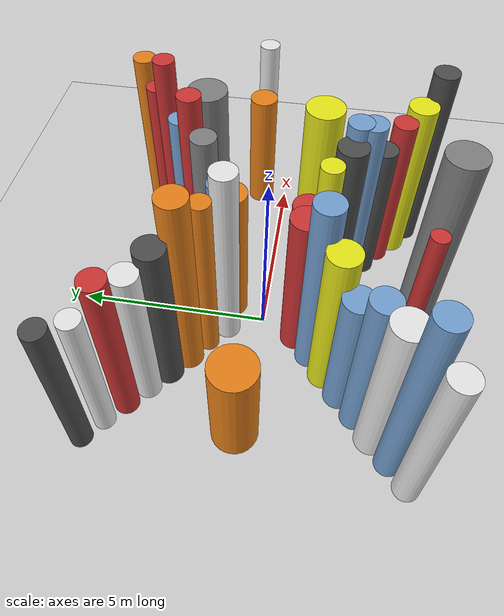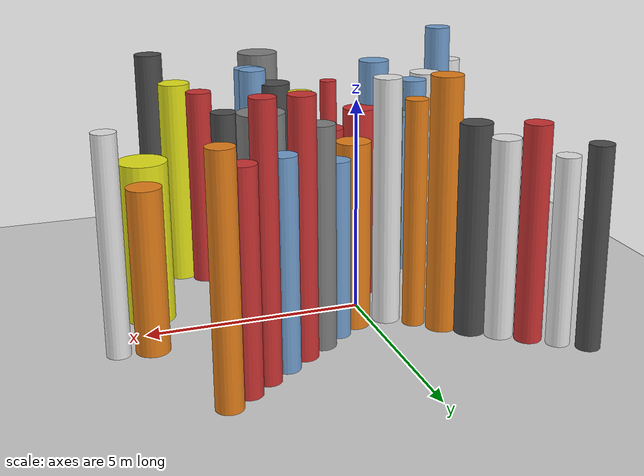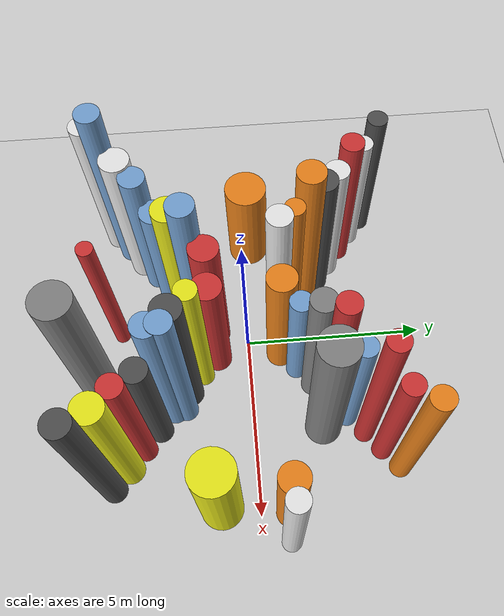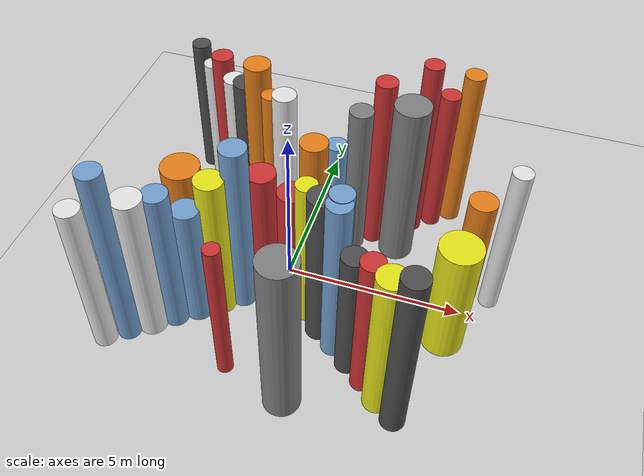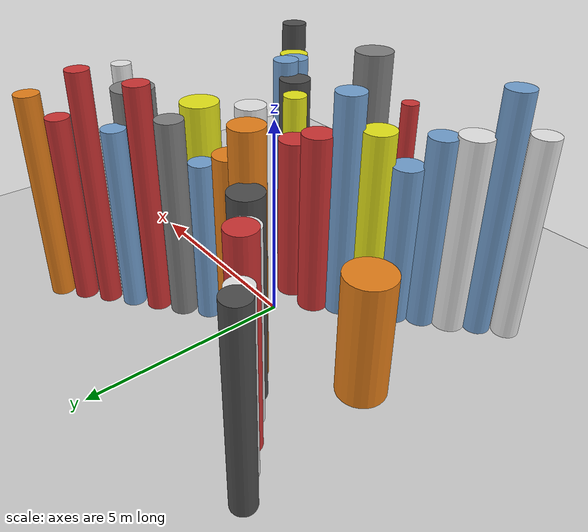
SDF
<?xml version='1.0'?>
<sdf version='1.6'>
  <world name='routeA_rl_v1__dense_recovery__rl_test__bottleneck_corridor__000032'>
    <!-- Sun light -->
    <light name='sun' type='directional'>
      <cast_shadows>1</cast_shadows>
      <pose>0 0 10 0 0 0</pose>
      <diffuse>0.8 0.8 0.8 1</diffuse>
      <specular>0.2 0.2 0.2 1</specular>
      <attenuation>
        <range>1000</range>
        <constant>0.9</constant>
        <linear>0.01</linear>
        <quadratic>0.001</quadratic>
      </attenuation>
      <direction>-0.5 0.1 -0.9</direction>
    </light>

    <!-- Ground plane -->
    <model name='ground_plane'>
      <static>1</static>
      <link name='link'>
        <collision name='collision'>
          <geometry>
            <plane>
              <normal>0 0 1</normal>
              <size>100 100</size>
            </plane>
          </geometry>
          <surface>
            <contact>
              <collide_bitmask>65535</collide_bitmask>
              <ode/>
            </contact>
            <friction>
              <ode>
                <mu>100</mu>
                <mu2>50</mu2>
              </ode>
              <torsional><ode/></torsional>
            </friction>
            <bounce/>
          </surface>
          <max_contacts>10</max_contacts>
        </collision>
        <visual name='visual'>
          <cast_shadows>0</cast_shadows>
          <geometry>
            <plane>
              <normal>0 0 1</normal>
              <size>100 100</size>
            </plane>
          </geometry>
          <material>
            <script>
              <uri>file://media/materials/scripts/gazebo.material</uri>
              <n>Gazebo/Grey</n>
            </script>
          </material>
        </visual>
      </link>
    </model>

    <!-- Environment -->
    <magnetic_field>6e-06 2.3e-05 -4.2e-05</magnetic_field>
    <atmosphere type='adiabatic'/>
    <physics name='default_physics' default='0' type='ode'>
      <gravity>0 0 -9.8</gravity>
      <max_step_size>0.004</max_step_size>
      <real_time_factor>1</real_time_factor>
      <real_time_update_rate>250</real_time_update_rate>
    </physics>
    <scene>
      <ambient>0.4 0.4 0.4 1</ambient>
      <background>0.7 0.7 0.7 1</background>
      <shadows>1</shadows>
    </scene>
    <wind/>
    <spherical_coordinates>
      <surface_model>EARTH_WGS84</surface_model>
      <latitude_deg>0</latitude_deg>
      <longitude_deg>0</longitude_deg>
      <elevation>0</elevation>
      <heading_deg>0</heading_deg>
    </spherical_coordinates>

    <!-- ============ OBSTACLES (40) ============ -->
    <model name='funnel_l_0'>
      <static>1</static>
      <link name='link'>
        <visual name='visual'>
          <geometry>
            <cylinder>
              <radius>0.3156</radius>
              <length>5.0139</length>
            </cylinder>
          </geometry>
          <material>
            <script>
              <n>Gazebo/White</n>
              <uri>file://media/materials/scripts/gazebo.material</uri>
            </script>
            <ambient>0.9 0.9 0.9 1</ambient>
          </material>
        </visual>
        <collision name='collision'>
          <geometry>
            <cylinder>
              <radius>0.3156</radius>
              <length>5.0139</length>
            </cylinder>
          </geometry>
          <max_contacts>10</max_contacts>
          <surface>
            <contact><ode/></contact>
            <bounce/>
            <friction>
              <ode><mu>1</mu><mu2>1</mu2></ode>
              <torsional><ode/></torsional>
            </friction>
          </surface>
        </collision>
      </link>
      <pose>-4.0000 -3.8000 2.5069 0 0 0.0000</pose>
    </model>

    <model name='funnel_r_0'>
      <static>1</static>
      <link name='link'>
        <visual name='visual'>
          <geometry>
            <cylinder>
              <radius>0.2722</radius>
              <length>4.5979</length>
            </cylinder>
          </geometry>
          <material>
            <script>
              <n>Gazebo/DarkGrey</n>
              <uri>file://media/materials/scripts/gazebo.material</uri>
            </script>
            <ambient>0.3 0.3 0.3 1</ambient>
          </material>
        </visual>
        <collision name='collision'>
          <geometry>
            <cylinder>
              <radius>0.2722</radius>
              <length>4.5979</length>
            </cylinder>
          </geometry>
          <max_contacts>10</max_contacts>
          <surface>
            <contact><ode/></contact>
            <bounce/>
            <friction>
              <ode><mu>1</mu><mu2>1</mu2></ode>
              <torsional><ode/></torsional>
            </friction>
          </surface>
        </collision>
      </link>
      <pose>-4.0000 3.8000 2.2989 0 0 0.0000</pose>
    </model>

    <model name='funnel_l_1'>
      <static>1</static>
      <link name='link'>
        <visual name='visual'>
          <geometry>
            <cylinder>
              <radius>0.3234</radius>
              <length>5.9593</length>
            </cylinder>
          </geometry>
          <material>
            <script>
              <n>Gazebo/Blue</n>
              <uri>file://media/materials/scripts/gazebo.material</uri>
            </script>
            <ambient>0.447 0.624 0.812 1</ambient>
          </material>
        </visual>
        <collision name='collision'>
          <geometry>
            <cylinder>
              <radius>0.3234</radius>
              <length>5.9593</length>
            </cylinder>
          </geometry>
          <max_contacts>10</max_contacts>
          <surface>
            <contact><ode/></contact>
            <bounce/>
            <friction>
              <ode><mu>1</mu><mu2>1</mu2></ode>
              <torsional><ode/></torsional>
            </friction>
          </surface>
        </collision>
      </link>
      <pose>-3.4857 -3.3857 2.9796 0 0 0.0000</pose>
    </model>

    <model name='funnel_r_1'>
      <static>1</static>
      <link name='link'>
        <visual name='visual'>
          <geometry>
            <cylinder>
              <radius>0.2677</radius>
              <length>4.2833</length>
            </cylinder>
          </geometry>
          <material>
            <script>
              <n>Gazebo/White</n>
              <uri>file://media/materials/scripts/gazebo.material</uri>
            </script>
            <ambient>0.9 0.9 0.9 1</ambient>
          </material>
        </visual>
        <collision name='collision'>
          <geometry>
            <cylinder>
              <radius>0.2677</radius>
              <length>4.2833</length>
            </cylinder>
          </geometry>
          <max_contacts>10</max_contacts>
          <surface>
            <contact><ode/></contact>
            <bounce/>
            <friction>
              <ode><mu>1</mu><mu2>1</mu2></ode>
              <torsional><ode/></torsional>
            </friction>
          </surface>
        </collision>
      </link>
      <pose>-3.4857 3.3857 2.1416 0 0 0.0000</pose>
    </model>

    <model name='funnel_l_2'>
      <static>1</static>
      <link name='link'>
        <visual name='visual'>
          <geometry>
            <cylinder>
              <radius>0.3946</radius>
              <length>4.8828</length>
            </cylinder>
          </geometry>
          <material>
            <script>
              <n>Gazebo/White</n>
              <uri>file://media/materials/scripts/gazebo.material</uri>
            </script>
            <ambient>0.9 0.9 0.9 1</ambient>
          </material>
        </visual>
        <collision name='collision'>
          <geometry>
            <cylinder>
              <radius>0.3946</radius>
              <length>4.8828</length>
            </cylinder>
          </geometry>
          <max_contacts>10</max_contacts>
          <surface>
            <contact><ode/></contact>
            <bounce/>
            <friction>
              <ode><mu>1</mu><mu2>1</mu2></ode>
              <torsional><ode/></torsional>
            </friction>
          </surface>
        </collision>
      </link>
      <pose>-2.9714 -2.9714 2.4414 0 0 0.0000</pose>
    </model>

    <model name='funnel_r_2'>
      <static>1</static>
      <link name='link'>
        <visual name='visual'>
          <geometry>
            <cylinder>
              <radius>0.3093</radius>
              <length>4.9366</length>
            </cylinder>
          </geometry>
          <material>
            <script>
              <n>Gazebo/Red</n>
              <uri>file://media/materials/scripts/gazebo.material</uri>
            </script>
            <ambient>0.8 0.2 0.2 1</ambient>
          </material>
        </visual>
        <collision name='collision'>
          <geometry>
            <cylinder>
              <radius>0.3093</radius>
              <length>4.9366</length>
            </cylinder>
          </geometry>
          <max_contacts>10</max_contacts>
          <surface>
            <contact><ode/></contact>
            <bounce/>
            <friction>
              <ode><mu>1</mu><mu2>1</mu2></ode>
              <torsional><ode/></torsional>
            </friction>
          </surface>
        </collision>
      </link>
      <pose>-2.9714 2.9714 2.4683 0 0 0.0000</pose>
    </model>

    <model name='funnel_l_3'>
      <static>1</static>
      <link name='link'>
        <visual name='visual'>
          <geometry>
            <cylinder>
              <radius>0.3444</radius>
              <length>4.8046</length>
            </cylinder>
          </geometry>
          <material>
            <script>
              <n>Gazebo/Blue</n>
              <uri>file://media/materials/scripts/gazebo.material</uri>
            </script>
            <ambient>0.447 0.624 0.812 1</ambient>
          </material>
        </visual>
        <collision name='collision'>
          <geometry>
            <cylinder>
              <radius>0.3444</radius>
              <length>4.8046</length>
            </cylinder>
          </geometry>
          <max_contacts>10</max_contacts>
          <surface>
            <contact><ode/></contact>
            <bounce/>
            <friction>
              <ode><mu>1</mu><mu2>1</mu2></ode>
              <torsional><ode/></torsional>
            </friction>
          </surface>
        </collision>
      </link>
      <pose>-2.4571 -2.5571 2.4023 0 0 0.0000</pose>
    </model>

    <model name='funnel_r_3'>
      <static>1</static>
      <link name='link'>
        <visual name='visual'>
          <geometry>
            <cylinder>
              <radius>0.3250</radius>
              <length>4.5537</length>
            </cylinder>
          </geometry>
          <material>
            <script>
              <n>Gazebo/White</n>
              <uri>file://media/materials/scripts/gazebo.material</uri>
            </script>
            <ambient>0.9 0.9 0.9 1</ambient>
          </material>
        </visual>
        <collision name='collision'>
          <geometry>
            <cylinder>
              <radius>0.3250</radius>
              <length>4.5537</length>
            </cylinder>
          </geometry>
          <max_contacts>10</max_contacts>
          <surface>
            <contact><ode/></contact>
            <bounce/>
            <friction>
              <ode><mu>1</mu><mu2>1</mu2></ode>
              <torsional><ode/></torsional>
            </friction>
          </surface>
        </collision>
      </link>
      <pose>-2.4571 2.5571 2.2768 0 0 0.0000</pose>
    </model>

    <model name='funnel_l_4'>
      <static>1</static>
      <link name='link'>
        <visual name='visual'>
          <geometry>
            <cylinder>
              <radius>0.3741</radius>
              <length>4.0487</length>
            </cylinder>
          </geometry>
          <material>
            <script>
              <n>Gazebo/Blue</n>
              <uri>file://media/materials/scripts/gazebo.material</uri>
            </script>
            <ambient>0.447 0.624 0.812 1</ambient>
          </material>
        </visual>
        <collision name='collision'>
          <geometry>
            <cylinder>
              <radius>0.3741</radius>
              <length>4.0487</length>
            </cylinder>
          </geometry>
          <max_contacts>10</max_contacts>
          <surface>
            <contact><ode/></contact>
            <bounce/>
            <friction>
              <ode><mu>1</mu><mu2>1</mu2></ode>
              <torsional><ode/></torsional>
            </friction>
          </surface>
        </collision>
      </link>
      <pose>-1.9429 -2.1429 2.0244 0 0 0.0000</pose>
    </model>

    <model name='funnel_r_4'>
      <static>1</static>
      <link name='link'>
        <visual name='visual'>
          <geometry>
            <cylinder>
              <radius>0.3630</radius>
              <length>4.8355</length>
            </cylinder>
          </geometry>
          <material>
            <script>
              <n>Gazebo/DarkGrey</n>
              <uri>file://media/materials/scripts/gazebo.material</uri>
            </script>
            <ambient>0.3 0.3 0.3 1</ambient>
          </material>
        </visual>
        <collision name='collision'>
          <geometry>
            <cylinder>
              <radius>0.3630</radius>
              <length>4.8355</length>
            </cylinder>
          </geometry>
          <max_contacts>10</max_contacts>
          <surface>
            <contact><ode/></contact>
            <bounce/>
            <friction>
              <ode><mu>1</mu><mu2>1</mu2></ode>
              <torsional><ode/></torsional>
            </friction>
          </surface>
        </collision>
      </link>
      <pose>-1.9429 2.1429 2.4178 0 0 0.0000</pose>
    </model>

    <model name='funnel_l_5'>
      <static>1</static>
      <link name='link'>
        <visual name='visual'>
          <geometry>
            <cylinder>
              <radius>0.3900</radius>
              <length>4.8066</length>
            </cylinder>
          </geometry>
          <material>
            <script>
              <n>Gazebo/Yellow</n>
              <uri>file://media/materials/scripts/gazebo.material</uri>
            </script>
            <ambient>0.9 0.9 0.1 1</ambient>
          </material>
        </visual>
        <collision name='collision'>
          <geometry>
            <cylinder>
              <radius>0.3900</radius>
              <length>4.8066</length>
            </cylinder>
          </geometry>
          <max_contacts>10</max_contacts>
          <surface>
            <contact><ode/></contact>
            <bounce/>
            <friction>
              <ode><mu>1</mu><mu2>1</mu2></ode>
              <torsional><ode/></torsional>
            </friction>
          </surface>
        </collision>
      </link>
      <pose>-1.4286 -1.7286 2.4033 0 0 0.0000</pose>
    </model>

    <model name='funnel_r_5'>
      <static>1</static>
      <link name='link'>
        <visual name='visual'>
          <geometry>
            <cylinder>
              <radius>0.3605</radius>
              <length>5.8195</length>
            </cylinder>
          </geometry>
          <material>
            <script>
              <n>Gazebo/Orange</n>
              <uri>file://media/materials/scripts/gazebo.material</uri>
            </script>
            <ambient>0.9 0.5 0.1 1</ambient>
          </material>
        </visual>
        <collision name='collision'>
          <geometry>
            <cylinder>
              <radius>0.3605</radius>
              <length>5.8195</length>
            </cylinder>
          </geometry>
          <max_contacts>10</max_contacts>
          <surface>
            <contact><ode/></contact>
            <bounce/>
            <friction>
              <ode><mu>1</mu><mu2>1</mu2></ode>
              <torsional><ode/></torsional>
            </friction>
          </surface>
        </collision>
      </link>
      <pose>-1.4286 1.7286 2.9098 0 0 0.0000</pose>
    </model>

    <model name='funnel_l_6'>
      <static>1</static>
      <link name='link'>
        <visual name='visual'>
          <geometry>
            <cylinder>
              <radius>0.3543</radius>
              <length>5.6189</length>
            </cylinder>
          </geometry>
          <material>
            <script>
              <n>Gazebo/Blue</n>
              <uri>file://media/materials/scripts/gazebo.material</uri>
            </script>
            <ambient>0.447 0.624 0.812 1</ambient>
          </material>
        </visual>
        <collision name='collision'>
          <geometry>
            <cylinder>
              <radius>0.3543</radius>
              <length>5.6189</length>
            </cylinder>
          </geometry>
          <max_contacts>10</max_contacts>
          <surface>
            <contact><ode/></contact>
            <bounce/>
            <friction>
              <ode><mu>1</mu><mu2>1</mu2></ode>
              <torsional><ode/></torsional>
            </friction>
          </surface>
        </collision>
      </link>
      <pose>-0.9143 -1.3143 2.8094 0 0 0.0000</pose>
    </model>

    <model name='funnel_r_6'>
      <static>1</static>
      <link name='link'>
        <visual name='visual'>
          <geometry>
            <cylinder>
              <radius>0.2574</radius>
              <length>5.2470</length>
            </cylinder>
          </geometry>
          <material>
            <script>
              <n>Gazebo/Orange</n>
              <uri>file://media/materials/scripts/gazebo.material</uri>
            </script>
            <ambient>0.9 0.5 0.1 1</ambient>
          </material>
        </visual>
        <collision name='collision'>
          <geometry>
            <cylinder>
              <radius>0.2574</radius>
              <length>5.2470</length>
            </cylinder>
          </geometry>
          <max_contacts>10</max_contacts>
          <surface>
            <contact><ode/></contact>
            <bounce/>
            <friction>
              <ode><mu>1</mu><mu2>1</mu2></ode>
              <torsional><ode/></torsional>
            </friction>
          </surface>
        </collision>
      </link>
      <pose>-0.9143 1.3143 2.6235 0 0 0.0000</pose>
    </model>

    <model name='funnel_l_7'>
      <static>1</static>
      <link name='link'>
        <visual name='visual'>
          <geometry>
            <cylinder>
              <radius>0.3856</radius>
              <length>4.5994</length>
            </cylinder>
          </geometry>
          <material>
            <script>
              <n>Gazebo/Red</n>
              <uri>file://media/materials/scripts/gazebo.material</uri>
            </script>
            <ambient>0.8 0.2 0.2 1</ambient>
          </material>
        </visual>
        <collision name='collision'>
          <geometry>
            <cylinder>
              <radius>0.3856</radius>
              <length>4.5994</length>
            </cylinder>
          </geometry>
          <max_contacts>10</max_contacts>
          <surface>
            <contact><ode/></contact>
            <bounce/>
            <friction>
              <ode><mu>1</mu><mu2>1</mu2></ode>
              <torsional><ode/></torsional>
            </friction>
          </surface>
        </collision>
      </link>
      <pose>-0.4000 -0.9000 2.2997 0 0 0.0000</pose>
    </model>

    <model name='funnel_r_7'>
      <static>1</static>
      <link name='link'>
        <visual name='visual'>
          <geometry>
            <cylinder>
              <radius>0.3204</radius>
              <length>5.6760</length>
            </cylinder>
          </geometry>
          <material>
            <script>
              <n>Gazebo/White</n>
              <uri>file://media/materials/scripts/gazebo.material</uri>
            </script>
            <ambient>0.9 0.9 0.9 1</ambient>
          </material>
        </visual>
        <collision name='collision'>
          <geometry>
            <cylinder>
              <radius>0.3204</radius>
              <length>5.6760</length>
            </cylinder>
          </geometry>
          <max_contacts>10</max_contacts>
          <surface>
            <contact><ode/></contact>
            <bounce/>
            <friction>
              <ode><mu>1</mu><mu2>1</mu2></ode>
              <torsional><ode/></torsional>
            </friction>
          </surface>
        </collision>
      </link>
      <pose>-0.4000 0.9000 2.8380 0 0 0.0000</pose>
    </model>

    <model name='funnel_out_l_0'>
      <static>1</static>
      <link name='link'>
        <visual name='visual'>
          <geometry>
            <cylinder>
              <radius>0.3883</radius>
              <length>4.1842</length>
            </cylinder>
          </geometry>
          <material>
            <script>
              <n>Gazebo/Red</n>
              <uri>file://media/materials/scripts/gazebo.material</uri>
            </script>
            <ambient>0.8 0.2 0.2 1</ambient>
          </material>
        </visual>
        <collision name='collision'>
          <geometry>
            <cylinder>
              <radius>0.3883</radius>
              <length>4.1842</length>
            </cylinder>
          </geometry>
          <max_contacts>10</max_contacts>
          <surface>
            <contact><ode/></contact>
            <bounce/>
            <friction>
              <ode><mu>1</mu><mu2>1</mu2></ode>
              <torsional><ode/></torsional>
            </friction>
          </surface>
        </collision>
      </link>
      <pose>0.4000 -0.9000 2.0921 0 0 0.0000</pose>
    </model>

    <model name='funnel_out_r_0'>
      <static>1</static>
      <link name='link'>
        <visual name='visual'>
          <geometry>
            <cylinder>
              <radius>0.3925</radius>
              <length>4.3171</length>
            </cylinder>
          </geometry>
          <material>
            <script>
              <n>Gazebo/Orange</n>
              <uri>file://media/materials/scripts/gazebo.material</uri>
            </script>
            <ambient>0.9 0.5 0.1 1</ambient>
          </material>
        </visual>
        <collision name='collision'>
          <geometry>
            <cylinder>
              <radius>0.3925</radius>
              <length>4.3171</length>
            </cylinder>
          </geometry>
          <max_contacts>10</max_contacts>
          <surface>
            <contact><ode/></contact>
            <bounce/>
            <friction>
              <ode><mu>1</mu><mu2>1</mu2></ode>
              <torsional><ode/></torsional>
            </friction>
          </surface>
        </collision>
      </link>
      <pose>0.4000 0.9000 2.1585 0 0 0.0000</pose>
    </model>

    <model name='funnel_out_l_1'>
      <static>1</static>
      <link name='link'>
        <visual name='visual'>
          <geometry>
            <cylinder>
              <radius>0.2839</radius>
              <length>4.9889</length>
            </cylinder>
          </geometry>
          <material>
            <script>
              <n>Gazebo/Yellow</n>
              <uri>file://media/materials/scripts/gazebo.material</uri>
            </script>
            <ambient>0.9 0.9 0.1 1</ambient>
          </material>
        </visual>
        <collision name='collision'>
          <geometry>
            <cylinder>
              <radius>0.2839</radius>
              <length>4.9889</length>
            </cylinder>
          </geometry>
          <max_contacts>10</max_contacts>
          <surface>
            <contact><ode/></contact>
            <bounce/>
            <friction>
              <ode><mu>1</mu><mu2>1</mu2></ode>
              <torsional><ode/></torsional>
            </friction>
          </surface>
        </collision>
      </link>
      <pose>0.9143 -1.3143 2.4945 0 0 0.0000</pose>
    </model>

    <model name='funnel_out_r_1'>
      <static>1</static>
      <link name='link'>
        <visual name='visual'>
          <geometry>
            <cylinder>
              <radius>0.2917</radius>
              <length>4.0588</length>
            </cylinder>
          </geometry>
          <material>
            <script>
              <n>Gazebo/Blue</n>
              <uri>file://media/materials/scripts/gazebo.material</uri>
            </script>
            <ambient>0.447 0.624 0.812 1</ambient>
          </material>
        </visual>
        <collision name='collision'>
          <geometry>
            <cylinder>
              <radius>0.2917</radius>
              <length>4.0588</length>
            </cylinder>
          </geometry>
          <max_contacts>10</max_contacts>
          <surface>
            <contact><ode/></contact>
            <bounce/>
            <friction>
              <ode><mu>1</mu><mu2>1</mu2></ode>
              <torsional><ode/></torsional>
            </friction>
          </surface>
        </collision>
      </link>
      <pose>0.9143 1.3143 2.0294 0 0 0.0000</pose>
    </model>

    <model name='funnel_out_l_2'>
      <static>1</static>
      <link name='link'>
        <visual name='visual'>
          <geometry>
            <cylinder>
              <radius>0.3753</radius>
              <length>5.1556</length>
            </cylinder>
          </geometry>
          <material>
            <script>
              <n>Gazebo/DarkGrey</n>
              <uri>file://media/materials/scripts/gazebo.material</uri>
            </script>
            <ambient>0.3 0.3 0.3 1</ambient>
          </material>
        </visual>
        <collision name='collision'>
          <geometry>
            <cylinder>
              <radius>0.3753</radius>
              <length>5.1556</length>
            </cylinder>
          </geometry>
          <max_contacts>10</max_contacts>
          <surface>
            <contact><ode/></contact>
            <bounce/>
            <friction>
              <ode><mu>1</mu><mu2>1</mu2></ode>
              <torsional><ode/></torsional>
            </friction>
          </surface>
        </collision>
      </link>
      <pose>1.4286 -1.7286 2.5778 0 0 0.0000</pose>
    </model>

    <model name='funnel_out_r_2'>
      <static>1</static>
      <link name='link'>
        <visual name='visual'>
          <geometry>
            <cylinder>
              <radius>0.3285</radius>
              <length>4.9956</length>
            </cylinder>
          </geometry>
          <material>
            <script>
              <n>Gazebo/Grey</n>
              <uri>file://media/materials/scripts/gazebo.material</uri>
            </script>
            <ambient>0.5 0.5 0.5 1</ambient>
          </material>
        </visual>
        <collision name='collision'>
          <geometry>
            <cylinder>
              <radius>0.3285</radius>
              <length>4.9956</length>
            </cylinder>
          </geometry>
          <max_contacts>10</max_contacts>
          <surface>
            <contact><ode/></contact>
            <bounce/>
            <friction>
              <ode><mu>1</mu><mu2>1</mu2></ode>
              <torsional><ode/></torsional>
            </friction>
          </surface>
        </collision>
      </link>
      <pose>1.4286 1.7286 2.4978 0 0 0.0000</pose>
    </model>

    <model name='funnel_out_l_3'>
      <static>1</static>
      <link name='link'>
        <visual name='visual'>
          <geometry>
            <cylinder>
              <radius>0.3260</radius>
              <length>5.4611</length>
            </cylinder>
          </geometry>
          <material>
            <script>
              <n>Gazebo/Blue</n>
              <uri>file://media/materials/scripts/gazebo.material</uri>
            </script>
            <ambient>0.447 0.624 0.812 1</ambient>
          </material>
        </visual>
        <collision name='collision'>
          <geometry>
            <cylinder>
              <radius>0.3260</radius>
              <length>5.4611</length>
            </cylinder>
          </geometry>
          <max_contacts>10</max_contacts>
          <surface>
            <contact><ode/></contact>
            <bounce/>
            <friction>
              <ode><mu>1</mu><mu2>1</mu2></ode>
              <torsional><ode/></torsional>
            </friction>
          </surface>
        </collision>
      </link>
      <pose>1.9429 -2.1429 2.7306 0 0 0.0000</pose>
    </model>

    <model name='funnel_out_r_3'>
      <static>1</static>
      <link name='link'>
        <visual name='visual'>
          <geometry>
            <cylinder>
              <radius>0.2957</radius>
              <length>5.7407</length>
            </cylinder>
          </geometry>
          <material>
            <script>
              <n>Gazebo/Red</n>
              <uri>file://media/materials/scripts/gazebo.material</uri>
            </script>
            <ambient>0.8 0.2 0.2 1</ambient>
          </material>
        </visual>
        <collision name='collision'>
          <geometry>
            <cylinder>
              <radius>0.2957</radius>
              <length>5.7407</length>
            </cylinder>
          </geometry>
          <max_contacts>10</max_contacts>
          <surface>
            <contact><ode/></contact>
            <bounce/>
            <friction>
              <ode><mu>1</mu><mu2>1</mu2></ode>
              <torsional><ode/></torsional>
            </friction>
          </surface>
        </collision>
      </link>
      <pose>1.9429 2.1429 2.8704 0 0 0.0000</pose>
    </model>

    <model name='funnel_out_l_4'>
      <static>1</static>
      <link name='link'>
        <visual name='visual'>
          <geometry>
            <cylinder>
              <radius>0.3286</radius>
              <length>4.3468</length>
            </cylinder>
          </geometry>
          <material>
            <script>
              <n>Gazebo/DarkGrey</n>
              <uri>file://media/materials/scripts/gazebo.material</uri>
            </script>
            <ambient>0.3 0.3 0.3 1</ambient>
          </material>
        </visual>
        <collision name='collision'>
          <geometry>
            <cylinder>
              <radius>0.3286</radius>
              <length>4.3468</length>
            </cylinder>
          </geometry>
          <max_contacts>10</max_contacts>
          <surface>
            <contact><ode/></contact>
            <bounce/>
            <friction>
              <ode><mu>1</mu><mu2>1</mu2></ode>
              <torsional><ode/></torsional>
            </friction>
          </surface>
        </collision>
      </link>
      <pose>2.4571 -2.5571 2.1734 0 0 0.0000</pose>
    </model>

    <model name='funnel_out_r_4'>
      <static>1</static>
      <link name='link'>
        <visual name='visual'>
          <geometry>
            <cylinder>
              <radius>0.2874</radius>
              <length>4.6518</length>
            </cylinder>
          </geometry>
          <material>
            <script>
              <n>Gazebo/Blue</n>
              <uri>file://media/materials/scripts/gazebo.material</uri>
            </script>
            <ambient>0.447 0.624 0.812 1</ambient>
          </material>
        </visual>
        <collision name='collision'>
          <geometry>
            <cylinder>
              <radius>0.2874</radius>
              <length>4.6518</length>
            </cylinder>
          </geometry>
          <max_contacts>10</max_contacts>
          <surface>
            <contact><ode/></contact>
            <bounce/>
            <friction>
              <ode><mu>1</mu><mu2>1</mu2></ode>
              <torsional><ode/></torsional>
            </friction>
          </surface>
        </collision>
      </link>
      <pose>2.4571 2.5571 2.3259 0 0 0.0000</pose>
    </model>

    <model name='funnel_out_l_5'>
      <static>1</static>
      <link name='link'>
        <visual name='visual'>
          <geometry>
            <cylinder>
              <radius>0.3059</radius>
              <length>4.8008</length>
            </cylinder>
          </geometry>
          <material>
            <script>
              <n>Gazebo/Red</n>
              <uri>file://media/materials/scripts/gazebo.material</uri>
            </script>
            <ambient>0.8 0.2 0.2 1</ambient>
          </material>
        </visual>
        <collision name='collision'>
          <geometry>
            <cylinder>
              <radius>0.3059</radius>
              <length>4.8008</length>
            </cylinder>
          </geometry>
          <max_contacts>10</max_contacts>
          <surface>
            <contact><ode/></contact>
            <bounce/>
            <friction>
              <ode><mu>1</mu><mu2>1</mu2></ode>
              <torsional><ode/></torsional>
            </friction>
          </surface>
        </collision>
      </link>
      <pose>2.9714 -2.9714 2.4004 0 0 0.0000</pose>
    </model>

    <model name='funnel_out_r_5'>
      <static>1</static>
      <link name='link'>
        <visual name='visual'>
          <geometry>
            <cylinder>
              <radius>0.2715</radius>
              <length>5.9400</length>
            </cylinder>
          </geometry>
          <material>
            <script>
              <n>Gazebo/Red</n>
              <uri>file://media/materials/scripts/gazebo.material</uri>
            </script>
            <ambient>0.8 0.2 0.2 1</ambient>
          </material>
        </visual>
        <collision name='collision'>
          <geometry>
            <cylinder>
              <radius>0.2715</radius>
              <length>5.9400</length>
            </cylinder>
          </geometry>
          <max_contacts>10</max_contacts>
          <surface>
            <contact><ode/></contact>
            <bounce/>
            <friction>
              <ode><mu>1</mu><mu2>1</mu2></ode>
              <torsional><ode/></torsional>
            </friction>
          </surface>
        </collision>
      </link>
      <pose>2.9714 2.9714 2.9700 0 0 0.0000</pose>
    </model>

    <model name='funnel_out_l_6'>
      <static>1</static>
      <link name='link'>
        <visual name='visual'>
          <geometry>
            <cylinder>
              <radius>0.3791</radius>
              <length>4.9654</length>
            </cylinder>
          </geometry>
          <material>
            <script>
              <n>Gazebo/Yellow</n>
              <uri>file://media/materials/scripts/gazebo.material</uri>
            </script>
            <ambient>0.9 0.9 0.1 1</ambient>
          </material>
        </visual>
        <collision name='collision'>
          <geometry>
            <cylinder>
              <radius>0.3791</radius>
              <length>4.9654</length>
            </cylinder>
          </geometry>
          <max_contacts>10</max_contacts>
          <surface>
            <contact><ode/></contact>
            <bounce/>
            <friction>
              <ode><mu>1</mu><mu2>1</mu2></ode>
              <torsional><ode/></torsional>
            </friction>
          </surface>
        </collision>
      </link>
      <pose>3.4857 -3.3857 2.4827 0 0 0.0000</pose>
    </model>

    <model name='funnel_out_r_6'>
      <static>1</static>
      <link name='link'>
        <visual name='visual'>
          <geometry>
            <cylinder>
              <radius>0.2800</radius>
              <length>4.7989</length>
            </cylinder>
          </geometry>
          <material>
            <script>
              <n>Gazebo/Red</n>
              <uri>file://media/materials/scripts/gazebo.material</uri>
            </script>
            <ambient>0.8 0.2 0.2 1</ambient>
          </material>
        </visual>
        <collision name='collision'>
          <geometry>
            <cylinder>
              <radius>0.2800</radius>
              <length>4.7989</length>
            </cylinder>
          </geometry>
          <max_contacts>10</max_contacts>
          <surface>
            <contact><ode/></contact>
            <bounce/>
            <friction>
              <ode><mu>1</mu><mu2>1</mu2></ode>
              <torsional><ode/></torsional>
            </friction>
          </surface>
        </collision>
      </link>
      <pose>3.4857 3.3857 2.3994 0 0 0.0000</pose>
    </model>

    <model name='funnel_out_l_7'>
      <static>1</static>
      <link name='link'>
        <visual name='visual'>
          <geometry>
            <cylinder>
              <radius>0.3287</radius>
              <length>5.6278</length>
            </cylinder>
          </geometry>
          <material>
            <script>
              <n>Gazebo/DarkGrey</n>
              <uri>file://media/materials/scripts/gazebo.material</uri>
            </script>
            <ambient>0.3 0.3 0.3 1</ambient>
          </material>
        </visual>
        <collision name='collision'>
          <geometry>
            <cylinder>
              <radius>0.3287</radius>
              <length>5.6278</length>
            </cylinder>
          </geometry>
          <max_contacts>10</max_contacts>
          <surface>
            <contact><ode/></contact>
            <bounce/>
            <friction>
              <ode><mu>1</mu><mu2>1</mu2></ode>
              <torsional><ode/></torsional>
            </friction>
          </surface>
        </collision>
      </link>
      <pose>4.0000 -3.8000 2.8139 0 0 0.0000</pose>
    </model>

    <model name='funnel_out_r_7'>
      <static>1</static>
      <link name='link'>
        <visual name='visual'>
          <geometry>
            <cylinder>
              <radius>0.2919</radius>
              <length>5.2860</length>
            </cylinder>
          </geometry>
          <material>
            <script>
              <n>Gazebo/Orange</n>
              <uri>file://media/materials/scripts/gazebo.material</uri>
            </script>
            <ambient>0.9 0.5 0.1 1</ambient>
          </material>
        </visual>
        <collision name='collision'>
          <geometry>
            <cylinder>
              <radius>0.2919</radius>
              <length>5.2860</length>
            </cylinder>
          </geometry>
          <max_contacts>10</max_contacts>
          <surface>
            <contact><ode/></contact>
            <bounce/>
            <friction>
              <ode><mu>1</mu><mu2>1</mu2></ode>
              <torsional><ode/></torsional>
            </friction>
          </surface>
        </collision>
      </link>
      <pose>4.0000 3.8000 2.6430 0 0 0.0000</pose>
    </model>

    <model name='bn_scatter_0'>
      <static>1</static>
      <link name='link'>
        <visual name='visual'>
          <geometry>
            <cylinder>
              <radius>0.2151</radius>
              <length>4.6941</length>
            </cylinder>
          </geometry>
          <material>
            <script>
              <n>Gazebo/Red</n>
              <uri>file://media/materials/scripts/gazebo.material</uri>
            </script>
            <ambient>0.8 0.2 0.2 1</ambient>
          </material>
        </visual>
        <collision name='collision'>
          <geometry>
            <cylinder>
              <radius>0.2151</radius>
              <length>4.6941</length>
            </cylinder>
          </geometry>
          <max_contacts>10</max_contacts>
          <surface>
            <contact><ode/></contact>
            <bounce/>
            <friction>
              <ode><mu>1</mu><mu2>1</mu2></ode>
              <torsional><ode/></torsional>
            </friction>
          </surface>
        </collision>
      </link>
      <pose>-0.5571 -3.6480 2.3470 0 0 0.0000</pose>
    </model>

    <model name='bn_scatter_1'>
      <static>1</static>
      <link name='link'>
        <visual name='visual'>
          <geometry>
            <cylinder>
              <radius>0.4950</radius>
              <length>5.3728</length>
            </cylinder>
          </geometry>
          <material>
            <script>
              <n>Gazebo/Grey</n>
              <uri>file://media/materials/scripts/gazebo.material</uri>
            </script>
            <ambient>0.5 0.5 0.5 1</ambient>
          </material>
        </visual>
        <collision name='collision'>
          <geometry>
            <cylinder>
              <radius>0.4950</radius>
              <length>5.3728</length>
            </cylinder>
          </geometry>
          <max_contacts>10</max_contacts>
          <surface>
            <contact><ode/></contact>
            <bounce/>
            <friction>
              <ode><mu>1</mu><mu2>1</mu2></ode>
              <torsional><ode/></torsional>
            </friction>
          </surface>
        </collision>
      </link>
      <pose>2.7203 1.8718 2.6864 0 0 0.0000</pose>
    </model>

    <model name='bn_scatter_2'>
      <static>1</static>
      <link name='link'>
        <visual name='visual'>
          <geometry>
            <cylinder>
              <radius>0.3104</radius>
              <length>5.4839</length>
            </cylinder>
          </geometry>
          <material>
            <script>
              <n>Gazebo/Blue</n>
              <uri>file://media/materials/scripts/gazebo.material</uri>
            </script>
            <ambient>0.447 0.624 0.812 1</ambient>
          </material>
        </visual>
        <collision name='collision'>
          <geometry>
            <cylinder>
              <radius>0.3104</radius>
              <length>5.4839</length>
            </cylinder>
          </geometry>
          <max_contacts>10</max_contacts>
          <surface>
            <contact><ode/></contact>
            <bounce/>
            <friction>
              <ode><mu>1</mu><mu2>1</mu2></ode>
              <torsional><ode/></torsional>
            </friction>
          </surface>
        </collision>
      </link>
      <pose>1.9134 -1.8389 2.7419 0 0 0.0000</pose>
    </model>

    <model name='bn_scatter_3'>
      <static>1</static>
      <link name='link'>
        <visual name='visual'>
          <geometry>
            <cylinder>
              <radius>0.4990</radius>
              <length>5.4516</length>
            </cylinder>
          </geometry>
          <material>
            <script>
              <n>Gazebo/Grey</n>
              <uri>file://media/materials/scripts/gazebo.material</uri>
            </script>
            <ambient>0.5 0.5 0.5 1</ambient>
          </material>
        </visual>
        <collision name='collision'>
          <geometry>
            <cylinder>
              <radius>0.4990</radius>
              <length>5.4516</length>
            </cylinder>
          </geometry>
          <max_contacts>10</max_contacts>
          <surface>
            <contact><ode/></contact>
            <bounce/>
            <friction>
              <ode><mu>1</mu><mu2>1</mu2></ode>
              <torsional><ode/></torsional>
            </friction>
          </surface>
        </collision>
      </link>
      <pose>1.1827 -4.1228 2.7258 0 0 0.0000</pose>
    </model>

    <model name='bn_scatter_4'>
      <static>1</static>
      <link name='link'>
        <visual name='visual'>
          <geometry>
            <cylinder>
              <radius>0.5723</radius>
              <length>3.0003</length>
            </cylinder>
          </geometry>
          <material>
            <script>
              <n>Gazebo/Orange</n>
              <uri>file://media/materials/scripts/gazebo.material</uri>
            </script>
            <ambient>0.9 0.5 0.1 1</ambient>
          </material>
        </visual>
        <collision name='collision'>
          <geometry>
            <cylinder>
              <radius>0.5723</radius>
              <length>3.0003</length>
            </cylinder>
          </geometry>
          <max_contacts>10</max_contacts>
          <surface>
            <contact><ode/></contact>
            <bounce/>
            <friction>
              <ode><mu>1</mu><mu2>1</mu2></ode>
              <torsional><ode/></torsional>
            </friction>
          </surface>
        </collision>
      </link>
      <pose>-3.2845 0.2310 1.5001 0 0 0.0000</pose>
    </model>

    <model name='bn_scatter_5'>
      <static>1</static>
      <link name='link'>
        <visual name='visual'>
          <geometry>
            <cylinder>
              <radius>0.2679</radius>
              <length>4.9405</length>
            </cylinder>
          </geometry>
          <material>
            <script>
              <n>Gazebo/White</n>
              <uri>file://media/materials/scripts/gazebo.material</uri>
            </script>
            <ambient>0.9 0.9 0.9 1</ambient>
          </material>
        </visual>
        <collision name='collision'>
          <geometry>
            <cylinder>
              <radius>0.2679</radius>
              <length>4.9405</length>
            </cylinder>
          </geometry>
          <max_contacts>10</max_contacts>
          <surface>
            <contact><ode/></contact>
            <bounce/>
            <friction>
              <ode><mu>1</mu><mu2>1</mu2></ode>
              <torsional><ode/></torsional>
            </friction>
          </surface>
        </collision>
      </link>
      <pose>5.6933 0.7227 2.4702 0 0 0.0000</pose>
    </model>

    <model name='bn_scatter_6'>
      <static>1</static>
      <link name='link'>
        <visual name='visual'>
          <geometry>
            <cylinder>
              <radius>0.5656</radius>
              <length>3.7688</length>
            </cylinder>
          </geometry>
          <material>
            <script>
              <n>Gazebo/Yellow</n>
              <uri>file://media/materials/scripts/gazebo.material</uri>
            </script>
            <ambient>0.9 0.9 0.1 1</ambient>
          </material>
        </visual>
        <collision name='collision'>
          <geometry>
            <cylinder>
              <radius>0.5656</radius>
              <length>3.7688</length>
            </cylinder>
          </geometry>
          <max_contacts>10</max_contacts>
          <surface>
            <contact><ode/></contact>
            <bounce/>
            <friction>
              <ode><mu>1</mu><mu2>1</mu2></ode>
              <torsional><ode/></torsional>
            </friction>
          </surface>
        </collision>
      </link>
      <pose>4.7016 -1.0062 1.8844 0 0 0.0000</pose>
    </model>

    <model name='bn_scatter_7'>
      <static>1</static>
      <link name='link'>
        <visual name='visual'>
          <geometry>
            <cylinder>
              <radius>0.3798</radius>
              <length>3.7146</length>
            </cylinder>
          </geometry>
          <material>
            <script>
              <n>Gazebo/Orange</n>
              <uri>file://media/materials/scripts/gazebo.material</uri>
            </script>
            <ambient>0.9 0.5 0.1 1</ambient>
          </material>
        </visual>
        <collision name='collision'>
          <geometry>
            <cylinder>
              <radius>0.3798</radius>
              <length>3.7146</length>
            </cylinder>
          </geometry>
          <max_contacts>10</max_contacts>
          <surface>
            <contact><ode/></contact>
            <bounce/>
            <friction>
              <ode><mu>1</mu><mu2>1</mu2></ode>
              <torsional><ode/></torsional>
            </friction>
          </surface>
        </collision>
      </link>
      <pose>4.9592 0.7582 1.8573 0 0 0.0000</pose>
    </model>

    <!-- GUI camera -->
    <gui fullscreen='0'>
      <camera name='user_camera'>
        <pose>-15 0 18 0 0.85 0.15</pose>
        <view_controller>orbit</view_controller>
        <projection_type>perspective</projection_type>
      </camera>
    </gui>
  </world>
</sdf>
